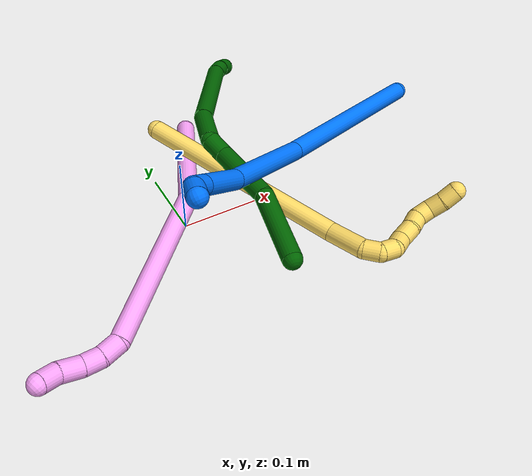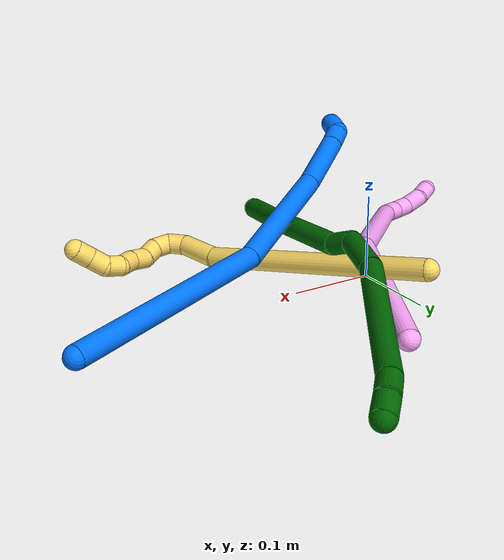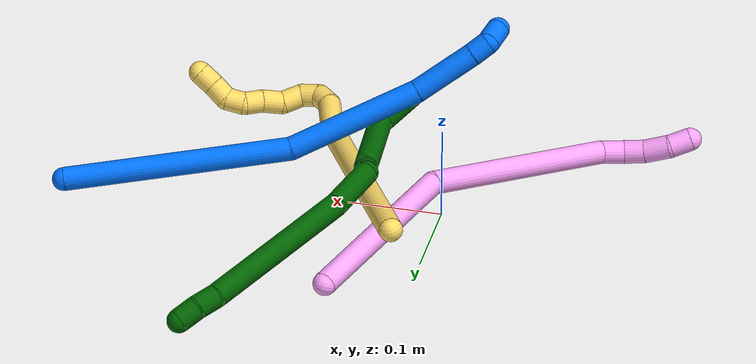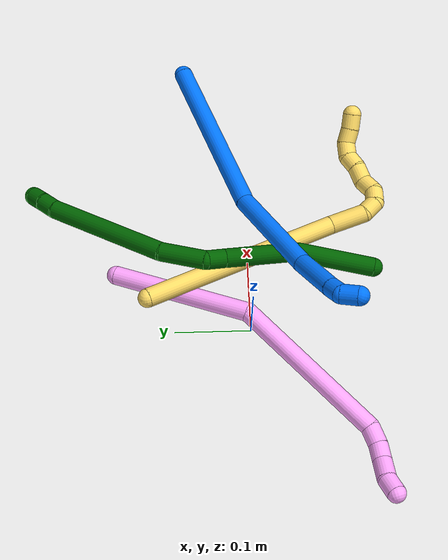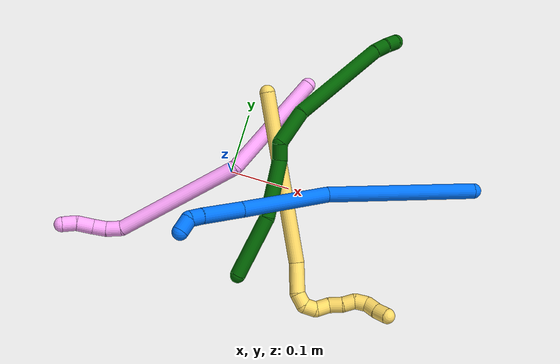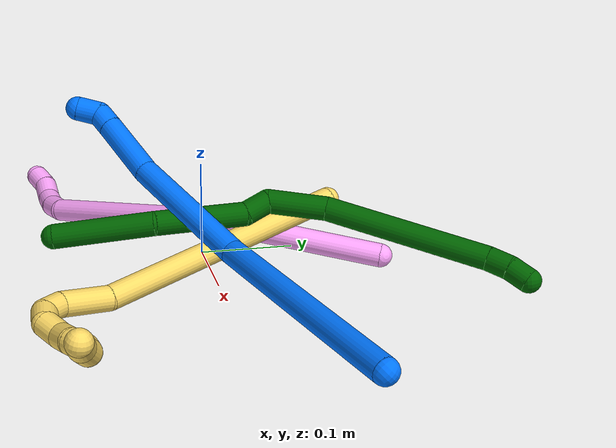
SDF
<sdf version="1.7">
 <world name="default">
  <model name="4">
   <static>0</static>
   <link name="4">
    <collision name="collision-cylinder-e_1_1_4">
     <pose>-0.060823 -0.049497 0.052245 0.758395 -0.701659 -0.289623</pose>
     <geometry><cylinder><radius>0.0125</radius><length>0.188457</length></cylinder></geometry>
     <surface>
      <friction><ode><mu>1.16</mu><mu2>1.16</mu2><slip1>0</slip1><slip2>0</slip2></ode></friction>
      <contact><ode><kp>1e+06</kp><kd>1</kd><max_vel>0</max_vel><min_depth>0.001</min_depth></ode></contact>
     </surface>
    </collision>
    <visual name="visual-cylinder-e_1_1_4">
     <pose>-0.060823 -0.049497 0.052245 0.758395 -0.701659 -0.289623</pose>
     <geometry><cylinder><radius>0.0125</radius><length>0.188457</length></cylinder></geometry>
     <material><ambient>1 0.65098 0.996078 1</ambient></material>
    </visual>
    <collision name="collision-cylinder-e_2_4_5">
     <pose>-0.165466 -0.126426 0.197555 0.286635 -0.424216 -0.062132</pose>
     <geometry><cylinder><radius>0.0125</radius><length>0.212918</length></cylinder></geometry>
     <surface>
      <friction><ode><mu>1.16</mu><mu2>1.16</mu2><slip1>0</slip1><slip2>0</slip2></ode></friction>
      <contact><ode><kp>1e+06</kp><kd>1</kd><max_vel>0</max_vel><min_depth>0.001</min_depth></ode></contact>
     </surface>
    </collision>
    <visual name="visual-cylinder-e_2_4_5">
     <pose>-0.165466 -0.126426 0.197555 0.286635 -0.424216 -0.062132</pose>
     <geometry><cylinder><radius>0.0125</radius><length>0.212918</length></cylinder></geometry>
     <material><ambient>1 0.65098 0.996078 1</ambient></material>
    </visual>
    <collision name="collision-cylinder-e_3_5_6">
     <pose>-0.20916 -0.15694 0.30281 0.247713 0.00992 0.001235</pose>
     <geometry><cylinder><radius>0.0125</radius><length>0.025151</length></cylinder></geometry>
     <surface>
      <friction><ode><mu>1.16</mu><mu2>1.16</mu2><slip1>0</slip1><slip2>0</slip2></ode></friction>
      <contact><ode><kp>1e+06</kp><kd>1</kd><max_vel>0</max_vel><min_depth>0.001</min_depth></ode></contact>
     </surface>
    </collision>
    <visual name="visual-cylinder-e_3_5_6">
     <pose>-0.20916 -0.15694 0.30281 0.247713 0.00992 0.001235</pose>
     <geometry><cylinder><radius>0.0125</radius><length>0.025151</length></cylinder></geometry>
     <material><ambient>1 0.65098 0.996078 1</ambient></material>
    </visual>
    <collision name="collision-cylinder-e_4_6_7">
     <pose>-0.206139 -0.163713 0.325327 0.343266 0.258202 0.044999</pose>
     <geometry><cylinder><radius>0.0125</radius><length>0.022682</length></cylinder></geometry>
     <surface>
      <friction><ode><mu>1.16</mu><mu2>1.16</mu2><slip1>0</slip1><slip2>0</slip2></ode></friction>
      <contact><ode><kp>1e+06</kp><kd>1</kd><max_vel>0</max_vel><min_depth>0.001</min_depth></ode></contact>
     </surface>
    </collision>
    <visual name="visual-cylinder-e_4_6_7">
     <pose>-0.206139 -0.163713 0.325327 0.343266 0.258202 0.044999</pose>
     <geometry><cylinder><radius>0.0125</radius><length>0.022682</length></cylinder></geometry>
     <material><ambient>1 0.65098 0.996078 1</ambient></material>
    </visual>
    <collision name="collision-cylinder-e_5_7_8">
     <pose>-0.198589 -0.174268 0.3468 0.551887 0.341574 0.097597</pose>
     <geometry><cylinder><radius>0.0125</radius><length>0.027788</length></cylinder></geometry>
     <surface>
      <friction><ode><mu>1.16</mu><mu2>1.16</mu2><slip1>0</slip1><slip2>0</slip2></ode></friction>
      <contact><ode><kp>1e+06</kp><kd>1</kd><max_vel>0</max_vel><min_depth>0.001</min_depth></ode></contact>
     </surface>
    </collision>
    <visual name="visual-cylinder-e_5_7_8">
     <pose>-0.198589 -0.174268 0.3468 0.551887 0.341574 0.097597</pose>
     <geometry><cylinder><radius>0.0125</radius><length>0.027788</length></cylinder></geometry>
     <material><ambient>1 0.65098 0.996078 1</ambient></material>
    </visual>
    <collision name="collision-cylinder-e_6_8_2">
     <pose>-0.193475 -0.187667 0.367401 0.604916 0.039987 0.012479</pose>
     <geometry><cylinder><radius>0.0125</radius><length>0.023003</length></cylinder></geometry>
     <surface>
      <friction><ode><mu>1.16</mu><mu2>1.16</mu2><slip1>0</slip1><slip2>0</slip2></ode></friction>
      <contact><ode><kp>1e+06</kp><kd>1</kd><max_vel>0</max_vel><min_depth>0.001</min_depth></ode></contact>
     </surface>
    </collision>
    <visual name="visual-cylinder-e_6_8_2">
     <pose>-0.193475 -0.187667 0.367401 0.604916 0.039987 0.012479</pose>
     <geometry><cylinder><radius>0.0125</radius><length>0.023003</length></cylinder></geometry>
     <material><ambient>1 0.65098 0.996078 1</ambient></material>
    </visual>
    <collision name="collision-sphere-2">
     <pose>-0.193016 -0.194203 0.376854 0 -0 0</pose>
     <geometry><sphere><radius>0.0125</radius></sphere></geometry>
     <surface>
      <friction><ode><mu>1.16</mu><mu2>1.16</mu2><slip1>0</slip1><slip2>0</slip2></ode></friction>
      <contact><ode><kp>1e+06</kp><kd>1</kd><max_vel>0</max_vel><min_depth>0.001</min_depth></ode></contact>
     </surface>
    </collision>
    <visual name="visual-sphere-2">
     <pose>-0.193016 -0.194203 0.376854 0 -0 0</pose>
     <geometry><sphere><radius>0.0125</radius></sphere></geometry>
     <material><ambient>1 0.65098 0.996078 1</ambient></material>
    </visual>
    <collision name="collision-sphere-4">
     <pose>-0.121646 -0.098995 0.104491 0 -0 0</pose>
     <geometry><sphere><radius>0.0125</radius></sphere></geometry>
     <surface>
      <friction><ode><mu>1.16</mu><mu2>1.16</mu2><slip1>0</slip1><slip2>0</slip2></ode></friction>
      <contact><ode><kp>1e+06</kp><kd>1</kd><max_vel>0</max_vel><min_depth>0.001</min_depth></ode></contact>
     </surface>
    </collision>
    <visual name="visual-sphere-4">
     <pose>-0.121646 -0.098995 0.104491 0 -0 0</pose>
     <geometry><sphere><radius>0.0125</radius></sphere></geometry>
     <material><ambient>1 0.65098 0.996078 1</ambient></material>
    </visual>
    <collision name="collision-sphere-1">
     <geometry><sphere><radius>0.0125</radius></sphere></geometry>
     <surface>
      <friction><ode><mu>1.16</mu><mu2>1.16</mu2><slip1>0</slip1><slip2>0</slip2></ode></friction>
      <contact><ode><kp>1e+06</kp><kd>1</kd><max_vel>0</max_vel><min_depth>0.001</min_depth></ode></contact>
     </surface>
    </collision>
    <visual name="visual-sphere-1">
     <geometry><sphere><radius>0.0125</radius></sphere></geometry>
     <material><ambient>1 0.65098 0.996078 1</ambient></material>
    </visual>
    <collision name="collision-sphere-8">
     <pose>-0.193935 -0.181131 0.357948 0 -0 0</pose>
     <geometry><sphere><radius>0.0125</radius></sphere></geometry>
     <surface>
      <friction><ode><mu>1.16</mu><mu2>1.16</mu2><slip1>0</slip1><slip2>0</slip2></ode></friction>
      <contact><ode><kp>1e+06</kp><kd>1</kd><max_vel>0</max_vel><min_depth>0.001</min_depth></ode></contact>
     </surface>
    </collision>
    <visual name="visual-sphere-8">
     <pose>-0.193935 -0.181131 0.357948 0 -0 0</pose>
     <geometry><sphere><radius>0.0125</radius></sphere></geometry>
     <material><ambient>1 0.65098 0.996078 1</ambient></material>
    </visual>
    <collision name="collision-sphere-5">
     <pose>-0.209285 -0.153856 0.290619 0 -0 0</pose>
     <geometry><sphere><radius>0.0125</radius></sphere></geometry>
     <surface>
      <friction><ode><mu>1.16</mu><mu2>1.16</mu2><slip1>0</slip1><slip2>0</slip2></ode></friction>
      <contact><ode><kp>1e+06</kp><kd>1</kd><max_vel>0</max_vel><min_depth>0.001</min_depth></ode></contact>
     </surface>
    </collision>
    <visual name="visual-sphere-5">
     <pose>-0.209285 -0.153856 0.290619 0 -0 0</pose>
     <geometry><sphere><radius>0.0125</radius></sphere></geometry>
     <material><ambient>1 0.65098 0.996078 1</ambient></material>
    </visual>
    <collision name="collision-sphere-6">
     <pose>-0.209035 -0.160023 0.315001 0 -0 0</pose>
     <geometry><sphere><radius>0.0125</radius></sphere></geometry>
     <surface>
      <friction><ode><mu>1.16</mu><mu2>1.16</mu2><slip1>0</slip1><slip2>0</slip2></ode></friction>
      <contact><ode><kp>1e+06</kp><kd>1</kd><max_vel>0</max_vel><min_depth>0.001</min_depth></ode></contact>
     </surface>
    </collision>
    <visual name="visual-sphere-6">
     <pose>-0.209035 -0.160023 0.315001 0 -0 0</pose>
     <geometry><sphere><radius>0.0125</radius></sphere></geometry>
     <material><ambient>1 0.65098 0.996078 1</ambient></material>
    </visual>
    <collision name="collision-sphere-7">
     <pose>-0.203244 -0.167404 0.335652 0 -0 0</pose>
     <geometry><sphere><radius>0.0125</radius></sphere></geometry>
     <surface>
      <friction><ode><mu>1.16</mu><mu2>1.16</mu2><slip1>0</slip1><slip2>0</slip2></ode></friction>
      <contact><ode><kp>1e+06</kp><kd>1</kd><max_vel>0</max_vel><min_depth>0.001</min_depth></ode></contact>
     </surface>
    </collision>
    <visual name="visual-sphere-7">
     <pose>-0.203244 -0.167404 0.335652 0 -0 0</pose>
     <geometry><sphere><radius>0.0125</radius></sphere></geometry>
     <material><ambient>1 0.65098 0.996078 1</ambient></material>
    </visual>
    <inertial>
     <pose>-0.133197 -0.106133 0.169985 0 -0 0</pose>
     <mass>0.5</mass>
     <inertia>
      <ixx>0.000978</ixx>
      <ixy>0</ixy>
      <ixz>0</ixz>
      <iyy>0.001073</iyy>
      <iyz>0</iyz>
      <izz>0.001237</izz>
     </inertia>
    </inertial>
   </link>
   <pose>0.081232 0.176052 0.012455 -1.87918 -0.270178 1.93599</pose>
  </model>
  <model name="5">
   <static>0</static>
   <link name="5">
    <collision name="collision-cylinder-e_1_1_4">
     <pose>0.052651 -0.127643 -0.024577 1.76102 0.384847 0.463382</pose>
     <geometry><cylinder><radius>0.0125</radius><length>0.280491</length></cylinder></geometry>
     <surface>
      <friction><ode><mu>1.16</mu><mu2>1.16</mu2><slip1>0</slip1><slip2>0</slip2></ode></friction>
      <contact><ode><kp>1e+06</kp><kd>1</kd><max_vel>0</max_vel><min_depth>0.001</min_depth></ode></contact>
     </surface>
    </collision>
    <visual name="visual-cylinder-e_1_1_4">
     <pose>0.052651 -0.127643 -0.024577 1.76102 0.384847 0.463382</pose>
     <geometry><cylinder><radius>0.0125</radius><length>0.280491</length></cylinder></geometry>
     <material><ambient>1 0.858824 0.4 1</ambient></material>
    </visual>
    <collision name="collision-cylinder-e_2_4_5">
     <pose>0.109915 -0.279817 -0.048803 1.55646 0.185872 0.183241</pose>
     <geometry><cylinder><radius>0.0125</radius><length>0.049928</length></cylinder></geometry>
     <surface>
      <friction><ode><mu>1.16</mu><mu2>1.16</mu2><slip1>0</slip1><slip2>0</slip2></ode></friction>
      <contact><ode><kp>1e+06</kp><kd>1</kd><max_vel>0</max_vel><min_depth>0.001</min_depth></ode></contact>
     </surface>
    </collision>
    <visual name="visual-cylinder-e_2_4_5">
     <pose>0.109915 -0.279817 -0.048803 1.55646 0.185872 0.183241</pose>
     <geometry><cylinder><radius>0.0125</radius><length>0.049928</length></cylinder></geometry>
     <material><ambient>1 0.858824 0.4 1</ambient></material>
    </visual>
    <collision name="collision-cylinder-e_3_5_6">
     <pose>0.12112 -0.312833 -0.047812 1.49558 0.659198 0.614447</pose>
     <geometry><cylinder><radius>0.0125</radius><length>0.021526</length></cylinder></geometry>
     <surface>
      <friction><ode><mu>1.16</mu><mu2>1.16</mu2><slip1>0</slip1><slip2>0</slip2></ode></friction>
      <contact><ode><kp>1e+06</kp><kd>1</kd><max_vel>0</max_vel><min_depth>0.001</min_depth></ode></contact>
     </surface>
    </collision>
    <visual name="visual-cylinder-e_3_5_6">
     <pose>0.12112 -0.312833 -0.047812 1.49558 0.659198 0.614447</pose>
     <geometry><cylinder><radius>0.0125</radius><length>0.021526</length></cylinder></geometry>
     <material><ambient>1 0.858824 0.4 1</ambient></material>
    </visual>
    <collision name="collision-cylinder-e_4_6_7">
     <pose>0.137818 -0.322723 -0.046318 1.02442 1.40939 0.891972</pose>
     <geometry><cylinder><radius>0.0125</radius><length>0.020478</length></cylinder></geometry>
     <surface>
      <friction><ode><mu>1.16</mu><mu2>1.16</mu2><slip1>0</slip1><slip2>0</slip2></ode></friction>
      <contact><ode><kp>1e+06</kp><kd>1</kd><max_vel>0</max_vel><min_depth>0.001</min_depth></ode></contact>
     </surface>
    </collision>
    <visual name="visual-cylinder-e_4_6_7">
     <pose>0.137818 -0.322723 -0.046318 1.02442 1.40939 0.891972</pose>
     <geometry><cylinder><radius>0.0125</radius><length>0.020478</length></cylinder></geometry>
     <material><ambient>1 0.858824 0.4 1</ambient></material>
    </visual>
    <collision name="collision-cylinder-e_5_7_8">
     <pose>0.158106 -0.31884 -0.045107 -1.50367 1.09082 -1.03218</pose>
     <geometry><cylinder><radius>0.0125</radius><length>0.022957</length></cylinder></geometry>
     <surface>
      <friction><ode><mu>1.16</mu><mu2>1.16</mu2><slip1>0</slip1><slip2>0</slip2></ode></friction>
      <contact><ode><kp>1e+06</kp><kd>1</kd><max_vel>0</max_vel><min_depth>0.001</min_depth></ode></contact>
     </surface>
    </collision>
    <visual name="visual-cylinder-e_5_7_8">
     <pose>0.158106 -0.31884 -0.045107 -1.50367 1.09082 -1.03218</pose>
     <geometry><cylinder><radius>0.0125</radius><length>0.022957</length></cylinder></geometry>
     <material><ambient>1 0.858824 0.4 1</ambient></material>
    </visual>
    <collision name="collision-cylinder-e_6_8_9">
     <pose>0.178637 -0.311402 -0.040251 -0.445498 1.12167 -0.282649</pose>
     <geometry><cylinder><radius>0.0125</radius><length>0.022977</length></cylinder></geometry>
     <surface>
      <friction><ode><mu>1.16</mu><mu2>1.16</mu2><slip1>0</slip1><slip2>0</slip2></ode></friction>
      <contact><ode><kp>1e+06</kp><kd>1</kd><max_vel>0</max_vel><min_depth>0.001</min_depth></ode></contact>
     </surface>
    </collision>
    <visual name="visual-cylinder-e_6_8_9">
     <pose>0.178637 -0.311402 -0.040251 -0.445498 1.12167 -0.282649</pose>
     <geometry><cylinder><radius>0.0125</radius><length>0.022977</length></cylinder></geometry>
     <material><ambient>1 0.858824 0.4 1</ambient></material>
    </visual>
    <collision name="collision-cylinder-e_7_9_10">
     <pose>0.197716 -0.304983 -0.032921 -0.985854 1.04024 -0.596902</pose>
     <geometry><cylinder><radius>0.0125</radius><length>0.020243</length></cylinder></geometry>
     <surface>
      <friction><ode><mu>1.16</mu><mu2>1.16</mu2><slip1>0</slip1><slip2>0</slip2></ode></friction>
      <contact><ode><kp>1e+06</kp><kd>1</kd><max_vel>0</max_vel><min_depth>0.001</min_depth></ode></contact>
     </surface>
    </collision>
    <visual name="visual-cylinder-e_7_9_10">
     <pose>0.197716 -0.304983 -0.032921 -0.985854 1.04024 -0.596902</pose>
     <geometry><cylinder><radius>0.0125</radius><length>0.020243</length></cylinder></geometry>
     <material><ambient>1 0.858824 0.4 1</ambient></material>
    </visual>
    <collision name="collision-cylinder-e_8_10_11">
     <pose>0.215595 -0.30152 -0.025983 0.193873 1.14139 0.124687</pose>
     <geometry><cylinder><radius>0.0125</radius><length>0.020125</length></cylinder></geometry>
     <surface>
      <friction><ode><mu>1.16</mu><mu2>1.16</mu2><slip1>0</slip1><slip2>0</slip2></ode></friction>
      <contact><ode><kp>1e+06</kp><kd>1</kd><max_vel>0</max_vel><min_depth>0.001</min_depth></ode></contact>
     </surface>
    </collision>
    <visual name="visual-cylinder-e_8_10_11">
     <pose>0.215595 -0.30152 -0.025983 0.193873 1.14139 0.124687</pose>
     <geometry><cylinder><radius>0.0125</radius><length>0.020125</length></cylinder></geometry>
     <material><ambient>1 0.858824 0.4 1</ambient></material>
    </visual>
    <collision name="collision-cylinder-e_9_11_12">
     <pose>0.230882 -0.306998 -0.014871 0.588439 0.630102 0.19687</pose>
     <geometry><cylinder><radius>0.0125</radius><length>0.020833</length></cylinder></geometry>
     <surface>
      <friction><ode><mu>1.16</mu><mu2>1.16</mu2><slip1>0</slip1><slip2>0</slip2></ode></friction>
      <contact><ode><kp>1e+06</kp><kd>1</kd><max_vel>0</max_vel><min_depth>0.001</min_depth></ode></contact>
     </surface>
    </collision>
    <visual name="visual-cylinder-e_9_11_12">
     <pose>0.230882 -0.306998 -0.014871 0.588439 0.630102 0.19687</pose>
     <geometry><cylinder><radius>0.0125</radius><length>0.020833</length></cylinder></geometry>
     <material><ambient>1 0.858824 0.4 1</ambient></material>
    </visual>
    <collision name="collision-cylinder-e_10_12_2">
     <pose>0.243334 -0.314751 -0.000448 0.39351 0.665947 0.137662</pose>
     <geometry><cylinder><radius>0.0125</radius><length>0.020441</length></cylinder></geometry>
     <surface>
      <friction><ode><mu>1.16</mu><mu2>1.16</mu2><slip1>0</slip1><slip2>0</slip2></ode></friction>
      <contact><ode><kp>1e+06</kp><kd>1</kd><max_vel>0</max_vel><min_depth>0.001</min_depth></ode></contact>
     </surface>
    </collision>
    <visual name="visual-cylinder-e_10_12_2">
     <pose>0.243334 -0.314751 -0.000448 0.39351 0.665947 0.137662</pose>
     <geometry><cylinder><radius>0.0125</radius><length>0.020441</length></cylinder></geometry>
     <material><ambient>1 0.858824 0.4 1</ambient></material>
    </visual>
    <collision name="collision-sphere-2">
     <pose>0.249648 -0.317833 0.006974 0 -0 0</pose>
     <geometry><sphere><radius>0.0125</radius></sphere></geometry>
     <surface>
      <friction><ode><mu>1.16</mu><mu2>1.16</mu2><slip1>0</slip1><slip2>0</slip2></ode></friction>
      <contact><ode><kp>1e+06</kp><kd>1</kd><max_vel>0</max_vel><min_depth>0.001</min_depth></ode></contact>
     </surface>
    </collision>
    <visual name="visual-sphere-2">
     <pose>0.249648 -0.317833 0.006974 0 -0 0</pose>
     <geometry><sphere><radius>0.0125</radius></sphere></geometry>
     <material><ambient>1 0.858824 0.4 1</ambient></material>
    </visual>
    <collision name="collision-sphere-12">
     <pose>0.237019 -0.31167 -0.007871 0 -0 0</pose>
     <geometry><sphere><radius>0.0125</radius></sphere></geometry>
     <surface>
      <friction><ode><mu>1.16</mu><mu2>1.16</mu2><slip1>0</slip1><slip2>0</slip2></ode></friction>
      <contact><ode><kp>1e+06</kp><kd>1</kd><max_vel>0</max_vel><min_depth>0.001</min_depth></ode></contact>
     </surface>
    </collision>
    <visual name="visual-sphere-12">
     <pose>0.237019 -0.31167 -0.007871 0 -0 0</pose>
     <geometry><sphere><radius>0.0125</radius></sphere></geometry>
     <material><ambient>1 0.858824 0.4 1</ambient></material>
    </visual>
    <collision name="collision-sphere-11">
     <pose>0.224744 -0.302327 -0.021872 0 -0 0</pose>
     <geometry><sphere><radius>0.0125</radius></sphere></geometry>
     <surface>
      <friction><ode><mu>1.16</mu><mu2>1.16</mu2><slip1>0</slip1><slip2>0</slip2></ode></friction>
      <contact><ode><kp>1e+06</kp><kd>1</kd><max_vel>0</max_vel><min_depth>0.001</min_depth></ode></contact>
     </surface>
    </collision>
    <visual name="visual-sphere-11">
     <pose>0.224744 -0.302327 -0.021872 0 -0 0</pose>
     <geometry><sphere><radius>0.0125</radius></sphere></geometry>
     <material><ambient>1 0.858824 0.4 1</ambient></material>
    </visual>
    <collision name="collision-sphere-10">
     <pose>0.206446 -0.300712 -0.030094 0 -0 0</pose>
     <geometry><sphere><radius>0.0125</radius></sphere></geometry>
     <surface>
      <friction><ode><mu>1.16</mu><mu2>1.16</mu2><slip1>0</slip1><slip2>0</slip2></ode></friction>
      <contact><ode><kp>1e+06</kp><kd>1</kd><max_vel>0</max_vel><min_depth>0.001</min_depth></ode></contact>
     </surface>
    </collision>
    <visual name="visual-sphere-10">
     <pose>0.206446 -0.300712 -0.030094 0 -0 0</pose>
     <geometry><sphere><radius>0.0125</radius></sphere></geometry>
     <material><ambient>1 0.858824 0.4 1</ambient></material>
    </visual>
    <collision name="collision-sphere-9">
     <pose>0.188986 -0.309253 -0.035749 0 -0 0</pose>
     <geometry><sphere><radius>0.0125</radius></sphere></geometry>
     <surface>
      <friction><ode><mu>1.16</mu><mu2>1.16</mu2><slip1>0</slip1><slip2>0</slip2></ode></friction>
      <contact><ode><kp>1e+06</kp><kd>1</kd><max_vel>0</max_vel><min_depth>0.001</min_depth></ode></contact>
     </surface>
    </collision>
    <visual name="visual-sphere-9">
     <pose>0.188986 -0.309253 -0.035749 0 -0 0</pose>
     <geometry><sphere><radius>0.0125</radius></sphere></geometry>
     <material><ambient>1 0.858824 0.4 1</ambient></material>
    </visual>
    <collision name="collision-sphere-4">
     <pose>0.105301 -0.255285 -0.049155 0 -0 0</pose>
     <geometry><sphere><radius>0.0125</radius></sphere></geometry>
     <surface>
      <friction><ode><mu>1.16</mu><mu2>1.16</mu2><slip1>0</slip1><slip2>0</slip2></ode></friction>
      <contact><ode><kp>1e+06</kp><kd>1</kd><max_vel>0</max_vel><min_depth>0.001</min_depth></ode></contact>
     </surface>
    </collision>
    <visual name="visual-sphere-4">
     <pose>0.105301 -0.255285 -0.049155 0 -0 0</pose>
     <geometry><sphere><radius>0.0125</radius></sphere></geometry>
     <material><ambient>1 0.858824 0.4 1</ambient></material>
    </visual>
    <collision name="collision-sphere-1">
     <geometry><sphere><radius>0.0125</radius></sphere></geometry>
     <surface>
      <friction><ode><mu>1.16</mu><mu2>1.16</mu2><slip1>0</slip1><slip2>0</slip2></ode></friction>
      <contact><ode><kp>1e+06</kp><kd>1</kd><max_vel>0</max_vel><min_depth>0.001</min_depth></ode></contact>
     </surface>
    </collision>
    <visual name="visual-sphere-1">
     <geometry><sphere><radius>0.0125</radius></sphere></geometry>
     <material><ambient>1 0.858824 0.4 1</ambient></material>
    </visual>
    <collision name="collision-sphere-8">
     <pose>0.168288 -0.313552 -0.044752 0 -0 0</pose>
     <geometry><sphere><radius>0.0125</radius></sphere></geometry>
     <surface>
      <friction><ode><mu>1.16</mu><mu2>1.16</mu2><slip1>0</slip1><slip2>0</slip2></ode></friction>
      <contact><ode><kp>1e+06</kp><kd>1</kd><max_vel>0</max_vel><min_depth>0.001</min_depth></ode></contact>
     </surface>
    </collision>
    <visual name="visual-sphere-8">
     <pose>0.168288 -0.313552 -0.044752 0 -0 0</pose>
     <geometry><sphere><radius>0.0125</radius></sphere></geometry>
     <material><ambient>1 0.858824 0.4 1</ambient></material>
    </visual>
    <collision name="collision-sphere-5">
     <pose>0.114528 -0.304349 -0.048451 0 -0 0</pose>
     <geometry><sphere><radius>0.0125</radius></sphere></geometry>
     <surface>
      <friction><ode><mu>1.16</mu><mu2>1.16</mu2><slip1>0</slip1><slip2>0</slip2></ode></friction>
      <contact><ode><kp>1e+06</kp><kd>1</kd><max_vel>0</max_vel><min_depth>0.001</min_depth></ode></contact>
     </surface>
    </collision>
    <visual name="visual-sphere-5">
     <pose>0.114528 -0.304349 -0.048451 0 -0 0</pose>
     <geometry><sphere><radius>0.0125</radius></sphere></geometry>
     <material><ambient>1 0.858824 0.4 1</ambient></material>
    </visual>
    <collision name="collision-sphere-6">
     <pose>0.127712 -0.321317 -0.047173 0 -0 0</pose>
     <geometry><sphere><radius>0.0125</radius></sphere></geometry>
     <surface>
      <friction><ode><mu>1.16</mu><mu2>1.16</mu2><slip1>0</slip1><slip2>0</slip2></ode></friction>
      <contact><ode><kp>1e+06</kp><kd>1</kd><max_vel>0</max_vel><min_depth>0.001</min_depth></ode></contact>
     </surface>
    </collision>
    <visual name="visual-sphere-6">
     <pose>0.127712 -0.321317 -0.047173 0 -0 0</pose>
     <geometry><sphere><radius>0.0125</radius></sphere></geometry>
     <material><ambient>1 0.858824 0.4 1</ambient></material>
    </visual>
    <collision name="collision-sphere-7">
     <pose>0.147924 -0.324129 -0.045463 0 -0 0</pose>
     <geometry><sphere><radius>0.0125</radius></sphere></geometry>
     <surface>
      <friction><ode><mu>1.16</mu><mu2>1.16</mu2><slip1>0</slip1><slip2>0</slip2></ode></friction>
      <contact><ode><kp>1e+06</kp><kd>1</kd><max_vel>0</max_vel><min_depth>0.001</min_depth></ode></contact>
     </surface>
    </collision>
    <visual name="visual-sphere-7">
     <pose>0.147924 -0.324129 -0.045463 0 -0 0</pose>
     <geometry><sphere><radius>0.0125</radius></sphere></geometry>
     <material><ambient>1 0.858824 0.4 1</ambient></material>
    </visual>
    <inertial>
     <pose>0.10309 -0.205325 -0.029554 0 -0 0</pose>
     <mass>0.5</mass>
     <inertia><ixx>0.00234</ixx><ixy>0</ixy><ixz>0</ixz><iyy>0.000747</iyy><iyz>0</iyz><izz>0.00099</izz></inertia>
    </inertial>
   </link>
   <pose>0.022887 0.133635 0.059509 -0.111654 0.226474 0.102232</pose>
  </model>
  <model name="6">
   <static>0</static>
   <link name="6">
    <collision name="collision-cylinder-e_1_1_4">
     <pose>0.000884 -0.000791 0.050911 0.015539 0.017361 0.000135</pose>
     <geometry><cylinder><radius>0.0125</radius><length>0.101849</length></cylinder></geometry>
     <surface>
      <friction><ode><mu>1.16</mu><mu2>1.16</mu2><slip1>0</slip1><slip2>0</slip2></ode></friction>
      <contact><ode><kp>1e+06</kp><kd>1</kd><max_vel>0</max_vel><min_depth>0.001</min_depth></ode></contact>
     </surface>
    </collision>
    <visual name="visual-cylinder-e_1_1_4">
     <pose>0.000884 -0.000791 0.050911 0.015539 0.017361 0.000135</pose>
     <geometry><cylinder><radius>0.0125</radius><length>0.101849</length></cylinder></geometry>
     <material><ambient>0 0.392157 0.003922 1</ambient></material>
    </visual>
    <collision name="collision-cylinder-e_2_4_5">
     <pose>-0.007716 0.006055 0.147303 -0.166361 -0.202814 0.016967</pose>
     <geometry><cylinder><radius>0.0125</radius><length>0.094165</length></cylinder></geometry>
     <surface>
      <friction><ode><mu>1.16</mu><mu2>1.16</mu2><slip1>0</slip1><slip2>0</slip2></ode></friction>
      <contact><ode><kp>1e+06</kp><kd>1</kd><max_vel>0</max_vel><min_depth>0.001</min_depth></ode></contact>
     </surface>
    </collision>
    <visual name="visual-cylinder-e_2_4_5">
     <pose>-0.007716 0.006055 0.147303 -0.166361 -0.202814 0.016967</pose>
     <geometry><cylinder><radius>0.0125</radius><length>0.094165</length></cylinder></geometry>
     <material><ambient>0 0.392157 0.003922 1</ambient></material>
    </visual>
    <collision name="collision-cylinder-e_3_5_6">
     <pose>-0.023497 0.011865 0.204966 0.148823 -0.472616 -0.0359</pose>
     <geometry><cylinder><radius>0.0125</radius><length>0.027671</length></cylinder></geometry>
     <surface>
      <friction><ode><mu>1.16</mu><mu2>1.16</mu2><slip1>0</slip1><slip2>0</slip2></ode></friction>
      <contact><ode><kp>1e+06</kp><kd>1</kd><max_vel>0</max_vel><min_depth>0.001</min_depth></ode></contact>
     </surface>
    </collision>
    <visual name="visual-cylinder-e_3_5_6">
     <pose>-0.023497 0.011865 0.204966 0.148823 -0.472616 -0.0359</pose>
     <geometry><cylinder><radius>0.0125</radius><length>0.027671</length></cylinder></geometry>
     <material><ambient>0 0.392157 0.003922 1</ambient></material>
    </visual>
    <collision name="collision-cylinder-e_4_6_7">
     <pose>-0.024116 0.015374 0.246655 -0.178909 0.187196 -0.016839</pose>
     <geometry><cylinder><radius>0.0125</radius><length>0.061037</length></cylinder></geometry>
     <surface>
      <friction><ode><mu>1.16</mu><mu2>1.16</mu2><slip1>0</slip1><slip2>0</slip2></ode></friction>
      <contact><ode><kp>1e+06</kp><kd>1</kd><max_vel>0</max_vel><min_depth>0.001</min_depth></ode></contact>
     </surface>
    </collision>
    <visual name="visual-cylinder-e_4_6_7">
     <pose>-0.024116 0.015374 0.246655 -0.178909 0.187196 -0.016839</pose>
     <geometry><cylinder><radius>0.0125</radius><length>0.061037</length></cylinder></geometry>
     <material><ambient>0 0.392157 0.003922 1</ambient></material>
    </visual>
    <collision name="collision-cylinder-e_5_7_8">
     <pose>0.018847 0.036726 0.350736 -0.211548 0.454656 -0.04911</pose>
     <geometry><cylinder><radius>0.0125</radius><length>0.169798</length></cylinder></geometry>
     <surface>
      <friction><ode><mu>1.16</mu><mu2>1.16</mu2><slip1>0</slip1><slip2>0</slip2></ode></friction>
      <contact><ode><kp>1e+06</kp><kd>1</kd><max_vel>0</max_vel><min_depth>0.001</min_depth></ode></contact>
     </surface>
    </collision>
    <visual name="visual-cylinder-e_5_7_8">
     <pose>0.018847 0.036726 0.350736 -0.211548 0.454656 -0.04911</pose>
     <geometry><cylinder><radius>0.0125</radius><length>0.169798</length></cylinder></geometry>
     <material><ambient>0 0.392157 0.003922 1</ambient></material>
    </visual>
    <collision name="collision-cylinder-e_6_8_9">
     <pose>0.063162 0.054712 0.434375 -0.214038 0.648524 -0.072188</pose>
     <geometry><cylinder><radius>0.0125</radius><length>0.023281</length></cylinder></geometry>
     <surface>
      <friction><ode><mu>1.16</mu><mu2>1.16</mu2><slip1>0</slip1><slip2>0</slip2></ode></friction>
      <contact><ode><kp>1e+06</kp><kd>1</kd><max_vel>0</max_vel><min_depth>0.001</min_depth></ode></contact>
     </surface>
    </collision>
    <visual name="visual-cylinder-e_6_8_9">
     <pose>0.063162 0.054712 0.434375 -0.214038 0.648524 -0.072188</pose>
     <geometry><cylinder><radius>0.0125</radius><length>0.023281</length></cylinder></geometry>
     <material><ambient>0 0.392157 0.003922 1</ambient></material>
    </visual>
    <collision name="collision-cylinder-e_7_9_2">
     <pose>0.077538 0.060225 0.450971 -0.439717 0.723141 -0.168631</pose>
     <geometry><cylinder><radius>0.0125</radius><length>0.022199</length></cylinder></geometry>
     <surface>
      <friction><ode><mu>1.16</mu><mu2>1.16</mu2><slip1>0</slip1><slip2>0</slip2></ode></friction>
      <contact><ode><kp>1e+06</kp><kd>1</kd><max_vel>0</max_vel><min_depth>0.001</min_depth></ode></contact>
     </surface>
    </collision>
    <visual name="visual-cylinder-e_7_9_2">
     <pose>0.077538 0.060225 0.450971 -0.439717 0.723141 -0.168631</pose>
     <geometry><cylinder><radius>0.0125</radius><length>0.022199</length></cylinder></geometry>
     <material><ambient>0 0.392157 0.003922 1</ambient></material>
    </visual>
    <collision name="collision-sphere-2">
     <pose>0.084883 0.063767 0.458501 0 -0 0</pose>
     <geometry><sphere><radius>0.0125</radius></sphere></geometry>
     <surface>
      <friction><ode><mu>1.16</mu><mu2>1.16</mu2><slip1>0</slip1><slip2>0</slip2></ode></friction>
      <contact><ode><kp>1e+06</kp><kd>1</kd><max_vel>0</max_vel><min_depth>0.001</min_depth></ode></contact>
     </surface>
    </collision>
    <visual name="visual-sphere-2">
     <pose>0.084883 0.063767 0.458501 0 -0 0</pose>
     <geometry><sphere><radius>0.0125</radius></sphere></geometry>
     <material><ambient>0 0.392157 0.003922 1</ambient></material>
    </visual>
    <collision name="collision-sphere-9">
     <pose>0.070193 0.056683 0.443441 0 -0 0</pose>
     <geometry><sphere><radius>0.0125</radius></sphere></geometry>
     <surface>
      <friction><ode><mu>1.16</mu><mu2>1.16</mu2><slip1>0</slip1><slip2>0</slip2></ode></friction>
      <contact><ode><kp>1e+06</kp><kd>1</kd><max_vel>0</max_vel><min_depth>0.001</min_depth></ode></contact>
     </surface>
    </collision>
    <visual name="visual-sphere-9">
     <pose>0.070193 0.056683 0.443441 0 -0 0</pose>
     <geometry><sphere><radius>0.0125</radius></sphere></geometry>
     <material><ambient>0 0.392157 0.003922 1</ambient></material>
    </visual>
    <collision name="collision-sphere-4">
     <pose>0.001768 -0.001582 0.101822 0 -0 0</pose>
     <geometry><sphere><radius>0.0125</radius></sphere></geometry>
     <surface>
      <friction><ode><mu>1.16</mu><mu2>1.16</mu2><slip1>0</slip1><slip2>0</slip2></ode></friction>
      <contact><ode><kp>1e+06</kp><kd>1</kd><max_vel>0</max_vel><min_depth>0.001</min_depth></ode></contact>
     </surface>
    </collision>
    <visual name="visual-sphere-4">
     <pose>0.001768 -0.001582 0.101822 0 -0 0</pose>
     <geometry><sphere><radius>0.0125</radius></sphere></geometry>
     <material><ambient>0 0.392157 0.003922 1</ambient></material>
    </visual>
    <collision name="collision-sphere-1">
     <geometry><sphere><radius>0.0125</radius></sphere></geometry>
     <surface>
      <friction><ode><mu>1.16</mu><mu2>1.16</mu2><slip1>0</slip1><slip2>0</slip2></ode></friction>
      <contact><ode><kp>1e+06</kp><kd>1</kd><max_vel>0</max_vel><min_depth>0.001</min_depth></ode></contact>
     </surface>
    </collision>
    <visual name="visual-sphere-1">
     <geometry><sphere><radius>0.0125</radius></sphere></geometry>
     <material><ambient>0 0.392157 0.003922 1</ambient></material>
    </visual>
    <collision name="collision-sphere-8">
     <pose>0.056131 0.052742 0.42531 0 -0 0</pose>
     <geometry><sphere><radius>0.0125</radius></sphere></geometry>
     <surface>
      <friction><ode><mu>1.16</mu><mu2>1.16</mu2><slip1>0</slip1><slip2>0</slip2></ode></friction>
      <contact><ode><kp>1e+06</kp><kd>1</kd><max_vel>0</max_vel><min_depth>0.001</min_depth></ode></contact>
     </surface>
    </collision>
    <visual name="visual-sphere-8">
     <pose>0.056131 0.052742 0.42531 0 -0 0</pose>
     <geometry><sphere><radius>0.0125</radius></sphere></geometry>
     <material><ambient>0 0.392157 0.003922 1</ambient></material>
    </visual>
    <collision name="collision-sphere-5">
     <pose>-0.017199 0.013691 0.192784 0 -0 0</pose>
     <geometry><sphere><radius>0.0125</radius></sphere></geometry>
     <surface>
      <friction><ode><mu>1.16</mu><mu2>1.16</mu2><slip1>0</slip1><slip2>0</slip2></ode></friction>
      <contact><ode><kp>1e+06</kp><kd>1</kd><max_vel>0</max_vel><min_depth>0.001</min_depth></ode></contact>
     </surface>
    </collision>
    <visual name="visual-sphere-5">
     <pose>-0.017199 0.013691 0.192784 0 -0 0</pose>
     <geometry><sphere><radius>0.0125</radius></sphere></geometry>
     <material><ambient>0 0.392157 0.003922 1</ambient></material>
    </visual>
    <collision name="collision-sphere-6">
     <pose>-0.029796 0.010038 0.217149 0 -0 0</pose>
     <geometry><sphere><radius>0.0125</radius></sphere></geometry>
     <surface>
      <friction><ode><mu>1.16</mu><mu2>1.16</mu2><slip1>0</slip1><slip2>0</slip2></ode></friction>
      <contact><ode><kp>1e+06</kp><kd>1</kd><max_vel>0</max_vel><min_depth>0.001</min_depth></ode></contact>
     </surface>
    </collision>
    <visual name="visual-sphere-6">
     <pose>-0.029796 0.010038 0.217149 0 -0 0</pose>
     <geometry><sphere><radius>0.0125</radius></sphere></geometry>
     <material><ambient>0 0.392157 0.003922 1</ambient></material>
    </visual>
    <collision name="collision-sphere-7">
     <pose>-0.018436 0.02071 0.276162 0 -0 0</pose>
     <geometry><sphere><radius>0.0125</radius></sphere></geometry>
     <surface>
      <friction><ode><mu>1.16</mu><mu2>1.16</mu2><slip1>0</slip1><slip2>0</slip2></ode></friction>
      <contact><ode><kp>1e+06</kp><kd>1</kd><max_vel>0</max_vel><min_depth>0.001</min_depth></ode></contact>
     </surface>
    </collision>
    <visual name="visual-sphere-7">
     <pose>-0.018436 0.02071 0.276162 0 -0 0</pose>
     <geometry><sphere><radius>0.0125</radius></sphere></geometry>
     <material><ambient>0 0.392157 0.003922 1</ambient></material>
    </visual>
    <inertial>
     <pose>0.007267 0.021206 0.238921 0 -0 0</pose>
     <mass>0.5</mass>
     <inertia>
      <ixx>0.000551</ixx>
      <ixy>0</ixy>
      <ixz>0</ixz>
      <iyy>0.000586</iyy>
      <iyz>0</iyz>
      <izz>-0.000231</izz>
     </inertia>
    </inertial>
   </link>
   <pose>0.062256 -0.160556 0.052104 -1.45034 0.275838 -0.132232</pose>
  </model>
  <model name="14">
   <static>0</static>
   <link name="14">
    <collision name="collision-cylinder-e_1_1_4">
     <pose>-0.104401 -0.05837 -0.011017 1.75735 -1.05351 -1.2236</pose>
     <geometry><cylinder><radius>0.0125</radius><length>0.240234</length></cylinder></geometry>
     <surface>
      <friction><ode><mu>1.16</mu><mu2>1.16</mu2><slip1>0</slip1><slip2>0</slip2></ode></friction>
      <contact><ode><kp>1e+06</kp><kd>1</kd><max_vel>0</max_vel><min_depth>0.001</min_depth></ode></contact>
     </surface>
    </collision>
    <visual name="visual-cylinder-e_1_1_4">
     <pose>-0.104401 -0.05837 -0.011017 1.75735 -1.05351 -1.2236</pose>
     <geometry><cylinder><radius>0.0125</radius><length>0.240234</length></cylinder></geometry>
     <material><ambient>0 0.462745 1 1</ambient></material>
    </visual>
    <collision name="collision-cylinder-e_2_4_5">
     <pose>-0.259607 -0.169019 -0.024605 1.61994 -0.770482 -0.805326</pose>
     <geometry><cylinder><radius>0.0125</radius><length>0.145887</length></cylinder></geometry>
     <surface>
      <friction><ode><mu>1.16</mu><mu2>1.16</mu2><slip1>0</slip1><slip2>0</slip2></ode></friction>
      <contact><ode><kp>1e+06</kp><kd>1</kd><max_vel>0</max_vel><min_depth>0.001</min_depth></ode></contact>
     </surface>
    </collision>
    <visual name="visual-cylinder-e_2_4_5">
     <pose>-0.259607 -0.169019 -0.024605 1.61994 -0.770482 -0.805326</pose>
     <geometry><cylinder><radius>0.0125</radius><length>0.145887</length></cylinder></geometry>
     <material><ambient>0 0.462745 1 1</ambient></material>
    </visual>
    <collision name="collision-cylinder-e_3_5_6">
     <pose>-0.331117 -0.249065 -0.023831 1.45091 -0.637316 -0.569204</pose>
     <geometry><cylinder><radius>0.0125</radius><length>0.069596</length></cylinder></geometry>
     <surface>
      <friction><ode><mu>1.16</mu><mu2>1.16</mu2><slip1>0</slip1><slip2>0</slip2></ode></friction>
      <contact><ode><kp>1e+06</kp><kd>1</kd><max_vel>0</max_vel><min_depth>0.001</min_depth></ode></contact>
     </surface>
    </collision>
    <visual name="visual-cylinder-e_3_5_6">
     <pose>-0.331117 -0.249065 -0.023831 1.45091 -0.637316 -0.569204</pose>
     <geometry><cylinder><radius>0.0125</radius><length>0.069596</length></cylinder></geometry>
     <material><ambient>0 0.462745 1 1</ambient></material>
    </visual>
    <collision name="collision-cylinder-e_4_6_7">
     <pose>-0.357525 -0.285524 -0.019651 1.47503 -0.578422 -0.52806</pose>
     <geometry><cylinder><radius>0.0125</radius><length>0.020859</length></cylinder></geometry>
     <surface>
      <friction><ode><mu>1.16</mu><mu2>1.16</mu2><slip1>0</slip1><slip2>0</slip2></ode></friction>
      <contact><ode><kp>1e+06</kp><kd>1</kd><max_vel>0</max_vel><min_depth>0.001</min_depth></ode></contact>
     </surface>
    </collision>
    <visual name="visual-cylinder-e_4_6_7">
     <pose>-0.357525 -0.285524 -0.019651 1.47503 -0.578422 -0.52806</pose>
     <geometry><cylinder><radius>0.0125</radius><length>0.020859</length></cylinder></geometry>
     <material><ambient>0 0.462745 1 1</ambient></material>
    </visual>
    <collision name="collision-cylinder-e_5_7_2">
     <pose>-0.364561 -0.304225 -0.024751 2.10602 -0.114213 -0.200053</pose>
     <geometry><cylinder><radius>0.0125</radius><length>0.023424</length></cylinder></geometry>
     <surface>
      <friction><ode><mu>1.16</mu><mu2>1.16</mu2><slip1>0</slip1><slip2>0</slip2></ode></friction>
      <contact><ode><kp>1e+06</kp><kd>1</kd><max_vel>0</max_vel><min_depth>0.001</min_depth></ode></contact>
     </surface>
    </collision>
    <visual name="visual-cylinder-e_5_7_2">
     <pose>-0.364561 -0.304225 -0.024751 2.10602 -0.114213 -0.200053</pose>
     <geometry><cylinder><radius>0.0125</radius><length>0.023424</length></cylinder></geometry>
     <material><ambient>0 0.462745 1 1</ambient></material>
    </visual>
    <collision name="collision-sphere-2">
     <pose>-0.365896 -0.314234 -0.030686 0 -0 0</pose>
     <geometry><sphere><radius>0.0125</radius></sphere></geometry>
     <surface>
      <friction><ode><mu>1.16</mu><mu2>1.16</mu2><slip1>0</slip1><slip2>0</slip2></ode></friction>
      <contact><ode><kp>1e+06</kp><kd>1</kd><max_vel>0</max_vel><min_depth>0.001</min_depth></ode></contact>
     </surface>
    </collision>
    <visual name="visual-sphere-2">
     <pose>-0.365896 -0.314234 -0.030686 0 -0 0</pose>
     <geometry><sphere><radius>0.0125</radius></sphere></geometry>
     <material><ambient>0 0.462745 1 1</ambient></material>
    </visual>
    <collision name="collision-sphere-7">
     <pose>-0.363226 -0.294216 -0.018816 0 -0 0</pose>
     <geometry><sphere><radius>0.0125</radius></sphere></geometry>
     <surface>
      <friction><ode><mu>1.16</mu><mu2>1.16</mu2><slip1>0</slip1><slip2>0</slip2></ode></friction>
      <contact><ode><kp>1e+06</kp><kd>1</kd><max_vel>0</max_vel><min_depth>0.001</min_depth></ode></contact>
     </surface>
    </collision>
    <visual name="visual-sphere-7">
     <pose>-0.363226 -0.294216 -0.018816 0 -0 0</pose>
     <geometry><sphere><radius>0.0125</radius></sphere></geometry>
     <material><ambient>0 0.462745 1 1</ambient></material>
    </visual>
    <collision name="collision-sphere-6">
     <pose>-0.351823 -0.276831 -0.020486 0 -0 0</pose>
     <geometry><sphere><radius>0.0125</radius></sphere></geometry>
     <surface>
      <friction><ode><mu>1.16</mu><mu2>1.16</mu2><slip1>0</slip1><slip2>0</slip2></ode></friction>
      <contact><ode><kp>1e+06</kp><kd>1</kd><max_vel>0</max_vel><min_depth>0.001</min_depth></ode></contact>
     </surface>
    </collision>
    <visual name="visual-sphere-6">
     <pose>-0.351823 -0.276831 -0.020486 0 -0 0</pose>
     <geometry><sphere><radius>0.0125</radius></sphere></geometry>
     <material><ambient>0 0.462745 1 1</ambient></material>
    </visual>
    <collision name="collision-sphere-5">
     <pose>-0.31041 -0.221298 -0.027176 0 -0 0</pose>
     <geometry><sphere><radius>0.0125</radius></sphere></geometry>
     <surface>
      <friction><ode><mu>1.16</mu><mu2>1.16</mu2><slip1>0</slip1><slip2>0</slip2></ode></friction>
      <contact><ode><kp>1e+06</kp><kd>1</kd><max_vel>0</max_vel><min_depth>0.001</min_depth></ode></contact>
     </surface>
    </collision>
    <visual name="visual-sphere-5">
     <pose>-0.31041 -0.221298 -0.027176 0 -0 0</pose>
     <geometry><sphere><radius>0.0125</radius></sphere></geometry>
     <material><ambient>0 0.462745 1 1</ambient></material>
    </visual>
    <collision name="collision-sphere-1">
     <geometry><sphere><radius>0.0125</radius></sphere></geometry>
     <surface>
      <friction><ode><mu>1.16</mu><mu2>1.16</mu2><slip1>0</slip1><slip2>0</slip2></ode></friction>
      <contact><ode><kp>1e+06</kp><kd>1</kd><max_vel>0</max_vel><min_depth>0.001</min_depth></ode></contact>
     </surface>
    </collision>
    <visual name="visual-sphere-1">
     <geometry><sphere><radius>0.0125</radius></sphere></geometry>
     <material><ambient>0 0.462745 1 1</ambient></material>
    </visual>
    <collision name="collision-sphere-4">
     <pose>-0.208803 -0.11674 -0.022034 0 -0 0</pose>
     <geometry><sphere><radius>0.0125</radius></sphere></geometry>
     <surface>
      <friction><ode><mu>1.16</mu><mu2>1.16</mu2><slip1>0</slip1><slip2>0</slip2></ode></friction>
      <contact><ode><kp>1e+06</kp><kd>1</kd><max_vel>0</max_vel><min_depth>0.001</min_depth></ode></contact>
     </surface>
    </collision>
    <visual name="visual-sphere-4">
     <pose>-0.208803 -0.11674 -0.022034 0 -0 0</pose>
     <geometry><sphere><radius>0.0125</radius></sphere></geometry>
     <material><ambient>0 0.462745 1 1</ambient></material>
    </visual>
    <inertial>
     <pose>-0.203991 -0.138192 -0.017769 0 -0 0</pose>
     <mass>0.5</mass>
     <inertia>
      <ixx>-0.00037</ixx>
      <ixy>0</ixy>
      <ixz>0</ixz>
      <iyy>0.000281</iyy>
      <iyz>0</iyz>
      <izz>0.001997</izz>
     </inertia>
    </inertial>
   </link>
   <pose>0.38851 0.078764 0.034489 -0.801478 -0.206929 -0.091589</pose>
  </model>
 </world>
</sdf>
